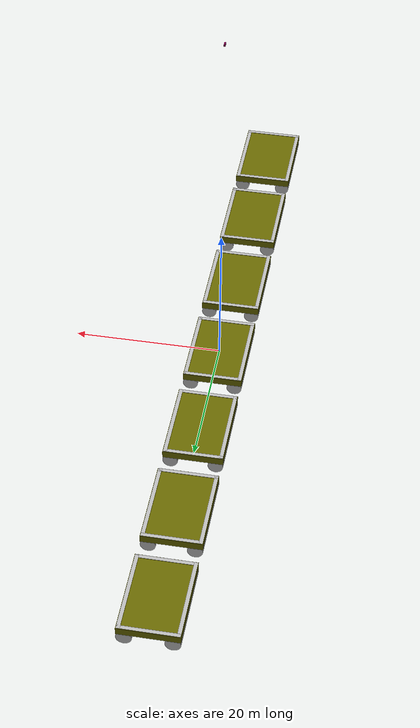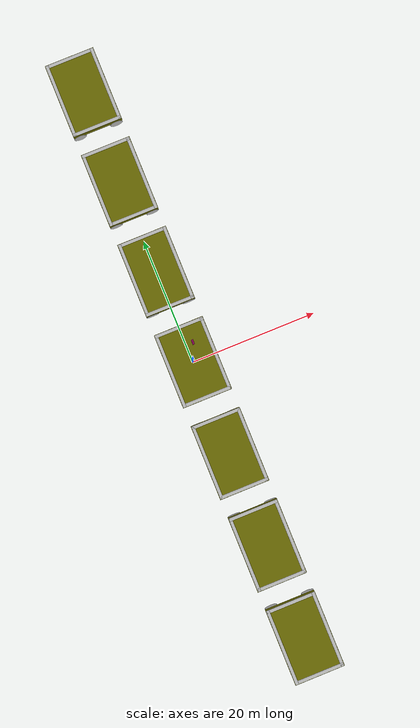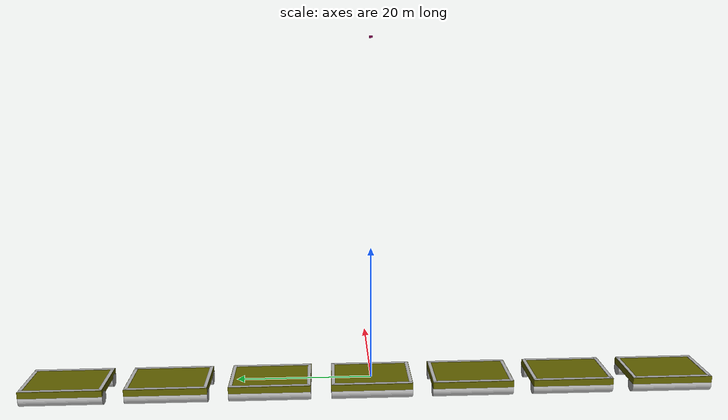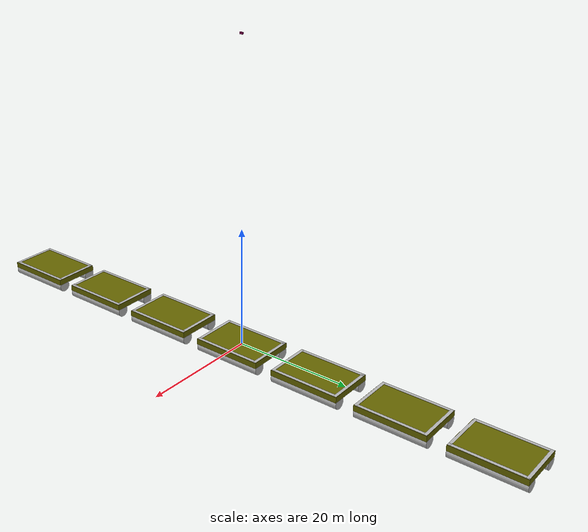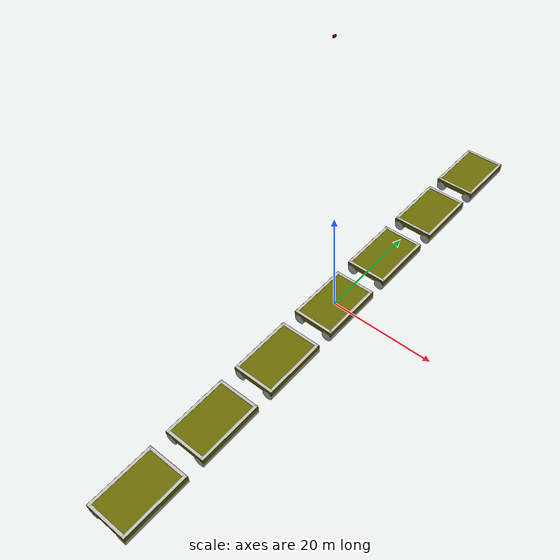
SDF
<sdf version="1.6">
 <world name="SandIsland">
  <scene>
   <sky><clouds><speed>12</speed></clouds></sky>
   <ambient>0.4 0.4 0.4 1</ambient>
   <background>0.7 0.7 0.7 1</background>
   <shadows>1</shadows>
  </scene>
  <wind><linear_velocity>5 0 0</linear_velocity></wind>
  <light name="sun" type="directional">
   <pose>0 0 10 0 -0 0</pose>
   <diffuse>0.8 0.8 0.8 1</diffuse>
   <specular>0.2 0.2 0.2 1</specular>
   <attenuation>
    <range>1000</range>
    <constant>0.9</constant>
    <linear>0.01</linear>
    <quadratic>0.001</quadratic>
   </attenuation>
   <direction>-0.5 0.1 -0.9</direction>
  </light>
  <model name="aerial_camera">
   <pose>0 0 50 0.000796 1.57 3.1408</pose>
   <static>1</static>
   <link name="camera">
    <collision name="camera"><geometry><box><size>0.3 0.5 0.2</size></box></geometry></collision>
    <visual name="camera">
     <geometry><box><size>0.3 0.5 0.2</size></box></geometry>
     <material><diffuse>0.5 0 0.3 1</diffuse></material>
    </visual>
    <sensor name="camera" type="camera">
     <update_rate>30</update_rate>
     <camera name="head">
      <horizontal_fov>1.57</horizontal_fov>
      <image><width>4096</width><height>2160</height><format>R8G8B8</format></image>
      <clip><near>0.02</near><far>300</far></clip>
      <noise><type>gaussian</type><mean>0</mean><stddev>0.007</stddev></noise>
     </camera>
     <plugin name="camera_controller" filename="libgazebo_ros_camera.so">
      <alwaysOn>true</alwaysOn>
      <updateRate>0.0</updateRate>
      <cameraName>aerial_camera/camera1</cameraName>
      <imageTopicName>image_raw</imageTopicName>
      <cameraInfoTopicName>camera_info</cameraInfoTopicName>
      <frameName>camera_link</frameName>
      <hackBaseline>0.07</hackBaseline>
      <distortionK1>0.0</distortionK1>
      <distortionK2>0.0</distortionK2>
      <distortionK3>0.0</distortionK3>
      <distortionT1>0.0</distortionT1>
      <distortionT2>0.0</distortionT2>
     </plugin>
    </sensor>
   </link>
  </model>
  <gravity>0 0 -9.8</gravity>
  <magnetic_field>6e-06 2.3e-05 -4.2e-05</magnetic_field>
  <atmosphere type="adiabatic"/>
  <physics name="default_physics" default="0" type="ode">
   <max_step_size>0.001</max_step_size>
   <real_time_factor>1</real_time_factor>
   <real_time_update_rate>1000</real_time_update_rate>
  </physics>
  <spherical_coordinates>
   <surface_model>EARTH_WGS84</surface_model>
   <latitude_deg>0</latitude_deg>
   <longitude_deg>0</longitude_deg>
   <elevation>0</elevation>
   <heading_deg>0</heading_deg>
  </spherical_coordinates>
  <model name="tug_boat">
   <pose>0.0 0.0 0.0 0.0 0.0 1.57</pose>
   <static>0</static>
   <link name="body">
    <collision name="body"><geometry><box><size>12 8 1</size></box></geometry></collision>
    <visual name="body">
     <geometry><box><size>12 8 1</size></box></geometry>
     <material><diffuse>0.4 0.4 0 1</diffuse></material>
    </visual>
    <inertial>
     <mass>1000</mass>
     <inertia><ixx>1</ixx><ixy>0</ixy><ixz>0</ixz><iyy>1</iyy><iyz>0</iyz><izz>1</izz></inertia>
    </inertial>
   </link>
   <link name="right_floater">
    <pose>0 -3 -1 0 1.57 0</pose>
    <collision name="right_floater">
     <geometry><cylinder><radius>1</radius><length>12</length></cylinder></geometry>
    </collision>
    <visual name="right_floater">
     <geometry><cylinder><radius>1</radius><length>12</length></cylinder></geometry>
    </visual>
    <inertial>
     <mass>30</mass>
     <inertia><ixx>1</ixx><ixy>0</ixy><ixz>0</ixz><iyy>1</iyy><iyz>0</iyz><izz>1</izz></inertia>
    </inertial>
   </link>
   <link name="left_floater">
    <pose>0 3 -1 0 1.57 0</pose>
    <collision name="left_floater">
     <geometry><cylinder><radius>1</radius><length>12</length></cylinder></geometry>
    </collision>
    <visual name="left_floater">
     <geometry><cylinder><radius>1</radius><length>12</length></cylinder></geometry>
    </visual>
    <inertial>
     <mass>30</mass>
     <inertia><ixx>1</ixx><ixy>0</ixy><ixz>0</ixz><iyy>1</iyy><iyz>0</iyz><izz>1</izz></inertia>
    </inertial>
   </link>
   <link name="left_line">
    <pose>0 -3.7 0.5 0 -0 0</pose>
    <collision name="left_line"><geometry><box><size>11.9 0.5 0.1</size></box></geometry></collision>
    <visual name="left_line"><geometry><box><size>11.9 0.5 0.1</size></box></geometry></visual>
    <inertial>
     <inertia><ixx>1</ixx><ixy>0</ixy><ixz>0</ixz><iyy>1</iyy><iyz>0</iyz><izz>1</izz></inertia>
     <mass>1</mass>
    </inertial>
   </link>
   <link name="right_line">
    <pose>0 3.7 0.5 0 -0 0</pose>
    <collision name="right_line"><geometry><box><size>11.9 0.5 0.1</size></box></geometry></collision>
    <visual name="right_line"><geometry><box><size>11.9 0.5 0.1</size></box></geometry></visual>
    <inertial>
     <inertia><ixx>1</ixx><ixy>0</ixy><ixz>0</ixz><iyy>1</iyy><iyz>0</iyz><izz>1</izz></inertia>
     <mass>1</mass>
    </inertial>
   </link>
   <link name="front_line">
    <pose>5.7 0 0.5 0 -0 0</pose>
    <collision name="front_line"><geometry><box><size>0.5 7.9 0.1</size></box></geometry></collision>
    <visual name="front_line"><geometry><box><size>0.5 7.9 0.1</size></box></geometry></visual>
    <inertial>
     <inertia><ixx>1</ixx><ixy>0</ixy><ixz>0</ixz><iyy>1</iyy><iyz>0</iyz><izz>1</izz></inertia>
     <mass>1</mass>
    </inertial>
   </link>
   <link name="back_line">
    <pose>-5.7 0 0.5 0 -0 0</pose>
    <collision name="back_line"><geometry><box><size>0.5 7.9 0.1</size></box></geometry></collision>
    <visual name="back_line"><geometry><box><size>0.5 7.9 0.1</size></box></geometry></visual>
    <inertial>
     <inertia><ixx>1</ixx><ixy>0</ixy><ixz>0</ixz><iyy>1</iyy><iyz>0</iyz><izz>1</izz></inertia>
     <mass>1</mass>
    </inertial>
   </link>
   <joint name="body2right_floater" type="fixed"><parent>body</parent><child>right_floater</child></joint>
   <joint name="body2left_floater" type="fixed"><parent>body</parent><child>left_floater</child></joint>
   <joint name="body2left_line" type="fixed"><parent>body</parent><child>left_line</child></joint>
   <joint name="body2right_line" type="fixed"><parent>body</parent><child>right_line</child></joint>
   <joint name="body2front_line" type="fixed"><parent>body</parent><child>front_line</child></joint>
   <joint name="body2back_line" type="fixed"><parent>body</parent><child>back_line</child></joint>
   <plugin name="BuoyancyPlugin" filename="libbuoyancy_gazebo_plugin.so">
    <fluid_density>1000</fluid_density>
    <fluid_level>0.0</fluid_level>
    <fluid_drag>5.0</fluid_drag>
    <link>
     <name>body</name>
     <center_of_volume>5.5 0 1</center_of_volume>
     <area>0.63</area>
     <height>0.70</height>
    </link>
   </plugin>
   <plugin name="BuoyancyPlugin" filename="libbuoyancy_gazebo_plugin.so">
    <fluid_density>1000</fluid_density>
    <fluid_level>0.0</fluid_level>
    <fluid_drag>5.0</fluid_drag>
    <link>
     <name>body</name>
     <center_of_volume>-5.5 0 1</center_of_volume>
     <area>0.63</area>
     <height>0.70</height>
    </link>
   </plugin>
   <plugin name="BuoyancyPlugin" filename="libbuoyancy_gazebo_plugin.so">
    <fluid_density>1000</fluid_density>
    <fluid_level>0.0</fluid_level>
    <fluid_drag>5.0</fluid_drag>
    <link>
     <name>body</name>
     <center_of_volume>0 -3.5 1</center_of_volume>
     <area>0.63</area>
     <height>0.70</height>
    </link>
   </plugin>
   <plugin name="BuoyancyPlugin" filename="libbuoyancy_gazebo_plugin.so">
    <fluid_density>1000</fluid_density>
    <fluid_level>0.0</fluid_level>
    <fluid_drag>5.0</fluid_drag>
    <link>
     <name>body</name>
     <center_of_volume>0 3.5 1</center_of_volume>
     <area>0.63</area>
     <height>0.70</height>
    </link>
   </plugin>
   <plugin name="ThrusterPlugin" filename="libusv_gazebo_thrust_plugin.so">
    <bodyName>body</bodyName>
    <mappingType>1</mappingType>
    <boatArea>96.0</boatArea>
    <boatWidth>12.0</boatWidth>
    <boatLength>8.0</boatLength>
    <thrustOffsetZ>-0.05</thrustOffsetZ>
    <maxCmd>100.0</maxCmd>
    <maxForceFwd>25.0</maxForceFwd>
    <maxForceRev>-25.0</maxForceRev>
    <cmdTimeout>0.1</cmdTimeout>
   </plugin>
  </model>
  <model name="tug_boat_0">
   <pose>0.0 -15.00 0.0 0.0 0.0 1.57</pose>
   <static>0</static>
   <link name="body">
    <collision name="body"><geometry><box><size>12 8 1</size></box></geometry></collision>
    <visual name="body">
     <geometry><box><size>12 8 1</size></box></geometry>
     <material><diffuse>0.4 0.4 0 1</diffuse></material>
    </visual>
    <inertial>
     <mass>1000</mass>
     <inertia><ixx>1</ixx><ixy>0</ixy><ixz>0</ixz><iyy>1</iyy><iyz>0</iyz><izz>1</izz></inertia>
    </inertial>
   </link>
   <link name="right_floater">
    <pose>0 -3 -1 0 1.57 0</pose>
    <collision name="right_floater">
     <geometry><cylinder><radius>1</radius><length>12</length></cylinder></geometry>
    </collision>
    <visual name="right_floater">
     <geometry><cylinder><radius>1</radius><length>12</length></cylinder></geometry>
    </visual>
    <inertial>
     <mass>30</mass>
     <inertia><ixx>1</ixx><ixy>0</ixy><ixz>0</ixz><iyy>1</iyy><iyz>0</iyz><izz>1</izz></inertia>
    </inertial>
   </link>
   <link name="left_floater">
    <pose>0 3 -1 0 1.57 0</pose>
    <collision name="left_floater">
     <geometry><cylinder><radius>1</radius><length>12</length></cylinder></geometry>
    </collision>
    <visual name="left_floater">
     <geometry><cylinder><radius>1</radius><length>12</length></cylinder></geometry>
    </visual>
    <inertial>
     <mass>30</mass>
     <inertia><ixx>1</ixx><ixy>0</ixy><ixz>0</ixz><iyy>1</iyy><iyz>0</iyz><izz>1</izz></inertia>
    </inertial>
   </link>
   <link name="left_line">
    <pose>0 -3.7 0.5 0 -0 0</pose>
    <collision name="left_line"><geometry><box><size>11.9 0.5 0.1</size></box></geometry></collision>
    <visual name="left_line"><geometry><box><size>11.9 0.5 0.1</size></box></geometry></visual>
    <inertial>
     <inertia><ixx>1</ixx><ixy>0</ixy><ixz>0</ixz><iyy>1</iyy><iyz>0</iyz><izz>1</izz></inertia>
     <mass>1</mass>
    </inertial>
   </link>
   <link name="right_line">
    <pose>0 3.7 0.5 0 -0 0</pose>
    <collision name="right_line"><geometry><box><size>11.9 0.5 0.1</size></box></geometry></collision>
    <visual name="right_line"><geometry><box><size>11.9 0.5 0.1</size></box></geometry></visual>
    <inertial>
     <inertia><ixx>1</ixx><ixy>0</ixy><ixz>0</ixz><iyy>1</iyy><iyz>0</iyz><izz>1</izz></inertia>
     <mass>1</mass>
    </inertial>
   </link>
   <link name="front_line">
    <pose>5.7 0 0.5 0 -0 0</pose>
    <collision name="front_line"><geometry><box><size>0.5 7.9 0.1</size></box></geometry></collision>
    <visual name="front_line"><geometry><box><size>0.5 7.9 0.1</size></box></geometry></visual>
    <inertial>
     <inertia><ixx>1</ixx><ixy>0</ixy><ixz>0</ixz><iyy>1</iyy><iyz>0</iyz><izz>1</izz></inertia>
     <mass>1</mass>
    </inertial>
   </link>
   <link name="back_line">
    <pose>-5.7 0 0.5 0 -0 0</pose>
    <collision name="back_line"><geometry><box><size>0.5 7.9 0.1</size></box></geometry></collision>
    <visual name="back_line"><geometry><box><size>0.5 7.9 0.1</size></box></geometry></visual>
    <inertial>
     <inertia><ixx>1</ixx><ixy>0</ixy><ixz>0</ixz><iyy>1</iyy><iyz>0</iyz><izz>1</izz></inertia>
     <mass>1</mass>
    </inertial>
   </link>
   <joint name="body2right_floater" type="fixed"><parent>body</parent><child>right_floater</child></joint>
   <joint name="body2left_floater" type="fixed"><parent>body</parent><child>left_floater</child></joint>
   <joint name="body2left_line" type="fixed"><parent>body</parent><child>left_line</child></joint>
   <joint name="body2right_line" type="fixed"><parent>body</parent><child>right_line</child></joint>
   <joint name="body2front_line" type="fixed"><parent>body</parent><child>front_line</child></joint>
   <joint name="body2back_line" type="fixed"><parent>body</parent><child>back_line</child></joint>
   <plugin name="BuoyancyPlugin" filename="libbuoyancy_gazebo_plugin.so">
    <fluid_density>1000</fluid_density>
    <fluid_level>0.0</fluid_level>
    <fluid_drag>5.0</fluid_drag>
    <link>
     <name>body</name>
     <center_of_volume>5.5 0 1</center_of_volume>
     <area>0.63</area>
     <height>0.70</height>
    </link>
   </plugin>
   <plugin name="BuoyancyPlugin" filename="libbuoyancy_gazebo_plugin.so">
    <fluid_density>1000</fluid_density>
    <fluid_level>0.0</fluid_level>
    <fluid_drag>5.0</fluid_drag>
    <link>
     <name>body</name>
     <center_of_volume>-5.5 0 1</center_of_volume>
     <area>0.63</area>
     <height>0.70</height>
    </link>
   </plugin>
   <plugin name="BuoyancyPlugin" filename="libbuoyancy_gazebo_plugin.so">
    <fluid_density>1000</fluid_density>
    <fluid_level>0.0</fluid_level>
    <fluid_drag>5.0</fluid_drag>
    <link>
     <name>body</name>
     <center_of_volume>0 -3.5 1</center_of_volume>
     <area>0.63</area>
     <height>0.70</height>
    </link>
   </plugin>
   <plugin name="BuoyancyPlugin" filename="libbuoyancy_gazebo_plugin.so">
    <fluid_density>1000</fluid_density>
    <fluid_level>0.0</fluid_level>
    <fluid_drag>5.0</fluid_drag>
    <link>
     <name>body</name>
     <center_of_volume>0 3.5 1</center_of_volume>
     <area>0.63</area>
     <height>0.70</height>
    </link>
   </plugin>
   <plugin name="ThrusterPlugin" filename="libusv_gazebo_thrust_plugin.so">
    <bodyName>body</bodyName>
    <mappingType>1</mappingType>
    <boatArea>96.0</boatArea>
    <boatWidth>12.0</boatWidth>
    <boatLength>8.0</boatLength>
    <thrustOffsetZ>-0.05</thrustOffsetZ>
    <maxCmd>100.0</maxCmd>
    <maxForceFwd>25.0</maxForceFwd>
    <maxForceRev>-25.0</maxForceRev>
    <cmdTimeout>0.1</cmdTimeout>
   </plugin>
  </model>
  <model name="tug_boat_1">
   <pose>0.0 -30.00 0.0 0.0 0.0 1.57</pose>
   <static>0</static>
   <link name="body">
    <collision name="body"><geometry><box><size>12 8 1</size></box></geometry></collision>
    <visual name="body">
     <geometry><box><size>12 8 1</size></box></geometry>
     <material><diffuse>0.4 0.4 0 1</diffuse></material>
    </visual>
    <inertial>
     <mass>1000</mass>
     <inertia><ixx>1</ixx><ixy>0</ixy><ixz>0</ixz><iyy>1</iyy><iyz>0</iyz><izz>1</izz></inertia>
    </inertial>
   </link>
   <link name="right_floater">
    <pose>0 -3 -1 0 1.57 0</pose>
    <collision name="right_floater">
     <geometry><cylinder><radius>1</radius><length>12</length></cylinder></geometry>
    </collision>
    <visual name="right_floater">
     <geometry><cylinder><radius>1</radius><length>12</length></cylinder></geometry>
    </visual>
    <inertial>
     <mass>30</mass>
     <inertia><ixx>1</ixx><ixy>0</ixy><ixz>0</ixz><iyy>1</iyy><iyz>0</iyz><izz>1</izz></inertia>
    </inertial>
   </link>
   <link name="left_floater">
    <pose>0 3 -1 0 1.57 0</pose>
    <collision name="left_floater">
     <geometry><cylinder><radius>1</radius><length>12</length></cylinder></geometry>
    </collision>
    <visual name="left_floater">
     <geometry><cylinder><radius>1</radius><length>12</length></cylinder></geometry>
    </visual>
    <inertial>
     <mass>30</mass>
     <inertia><ixx>1</ixx><ixy>0</ixy><ixz>0</ixz><iyy>1</iyy><iyz>0</iyz><izz>1</izz></inertia>
    </inertial>
   </link>
   <link name="left_line">
    <pose>0 -3.7 0.5 0 -0 0</pose>
    <collision name="left_line"><geometry><box><size>11.9 0.5 0.1</size></box></geometry></collision>
    <visual name="left_line"><geometry><box><size>11.9 0.5 0.1</size></box></geometry></visual>
    <inertial>
     <inertia><ixx>1</ixx><ixy>0</ixy><ixz>0</ixz><iyy>1</iyy><iyz>0</iyz><izz>1</izz></inertia>
     <mass>1</mass>
    </inertial>
   </link>
   <link name="right_line">
    <pose>0 3.7 0.5 0 -0 0</pose>
    <collision name="right_line"><geometry><box><size>11.9 0.5 0.1</size></box></geometry></collision>
    <visual name="right_line"><geometry><box><size>11.9 0.5 0.1</size></box></geometry></visual>
    <inertial>
     <inertia><ixx>1</ixx><ixy>0</ixy><ixz>0</ixz><iyy>1</iyy><iyz>0</iyz><izz>1</izz></inertia>
     <mass>1</mass>
    </inertial>
   </link>
   <link name="front_line">
    <pose>5.7 0 0.5 0 -0 0</pose>
    <collision name="front_line"><geometry><box><size>0.5 7.9 0.1</size></box></geometry></collision>
    <visual name="front_line"><geometry><box><size>0.5 7.9 0.1</size></box></geometry></visual>
    <inertial>
     <inertia><ixx>1</ixx><ixy>0</ixy><ixz>0</ixz><iyy>1</iyy><iyz>0</iyz><izz>1</izz></inertia>
     <mass>1</mass>
    </inertial>
   </link>
   <link name="back_line">
    <pose>-5.7 0 0.5 0 -0 0</pose>
    <collision name="back_line"><geometry><box><size>0.5 7.9 0.1</size></box></geometry></collision>
    <visual name="back_line"><geometry><box><size>0.5 7.9 0.1</size></box></geometry></visual>
    <inertial>
     <inertia><ixx>1</ixx><ixy>0</ixy><ixz>0</ixz><iyy>1</iyy><iyz>0</iyz><izz>1</izz></inertia>
     <mass>1</mass>
    </inertial>
   </link>
   <joint name="body2right_floater" type="fixed"><parent>body</parent><child>right_floater</child></joint>
   <joint name="body2left_floater" type="fixed"><parent>body</parent><child>left_floater</child></joint>
   <joint name="body2left_line" type="fixed"><parent>body</parent><child>left_line</child></joint>
   <joint name="body2right_line" type="fixed"><parent>body</parent><child>right_line</child></joint>
   <joint name="body2front_line" type="fixed"><parent>body</parent><child>front_line</child></joint>
   <joint name="body2back_line" type="fixed"><parent>body</parent><child>back_line</child></joint>
   <plugin name="BuoyancyPlugin" filename="libbuoyancy_gazebo_plugin.so">
    <fluid_density>1000</fluid_density>
    <fluid_level>0.0</fluid_level>
    <fluid_drag>5.0</fluid_drag>
    <link>
     <name>body</name>
     <center_of_volume>5.5 0 1</center_of_volume>
     <area>0.63</area>
     <height>0.70</height>
    </link>
   </plugin>
   <plugin name="BuoyancyPlugin" filename="libbuoyancy_gazebo_plugin.so">
    <fluid_density>1000</fluid_density>
    <fluid_level>0.0</fluid_level>
    <fluid_drag>5.0</fluid_drag>
    <link>
     <name>body</name>
     <center_of_volume>-5.5 0 1</center_of_volume>
     <area>0.63</area>
     <height>0.70</height>
    </link>
   </plugin>
   <plugin name="BuoyancyPlugin" filename="libbuoyancy_gazebo_plugin.so">
    <fluid_density>1000</fluid_density>
    <fluid_level>0.0</fluid_level>
    <fluid_drag>5.0</fluid_drag>
    <link>
     <name>body</name>
     <center_of_volume>0 -3.5 1</center_of_volume>
     <area>0.63</area>
     <height>0.70</height>
    </link>
   </plugin>
   <plugin name="BuoyancyPlugin" filename="libbuoyancy_gazebo_plugin.so">
    <fluid_density>1000</fluid_density>
    <fluid_level>0.0</fluid_level>
    <fluid_drag>5.0</fluid_drag>
    <link>
     <name>body</name>
     <center_of_volume>0 3.5 1</center_of_volume>
     <area>0.63</area>
     <height>0.70</height>
    </link>
   </plugin>
   <plugin name="ThrusterPlugin" filename="libusv_gazebo_thrust_plugin.so">
    <bodyName>body</bodyName>
    <mappingType>1</mappingType>
    <boatArea>96.0</boatArea>
    <boatWidth>12.0</boatWidth>
    <boatLength>8.0</boatLength>
    <thrustOffsetZ>-0.05</thrustOffsetZ>
    <maxCmd>100.0</maxCmd>
    <maxForceFwd>25.0</maxForceFwd>
    <maxForceRev>-25.0</maxForceRev>
    <cmdTimeout>0.1</cmdTimeout>
   </plugin>
  </model>
  <model name="tug_boat_2">
   <pose>0.0 -45.00 0.0 0.0 0.0 1.57</pose>
   <static>0</static>
   <link name="body">
    <collision name="body"><geometry><box><size>12 8 1</size></box></geometry></collision>
    <visual name="body">
     <geometry><box><size>12 8 1</size></box></geometry>
     <material><diffuse>0.4 0.4 0 1</diffuse></material>
    </visual>
    <inertial>
     <mass>1000</mass>
     <inertia><ixx>1</ixx><ixy>0</ixy><ixz>0</ixz><iyy>1</iyy><iyz>0</iyz><izz>1</izz></inertia>
    </inertial>
   </link>
   <link name="right_floater">
    <pose>0 -3 -1 0 1.57 0</pose>
    <collision name="right_floater">
     <geometry><cylinder><radius>1</radius><length>12</length></cylinder></geometry>
    </collision>
    <visual name="right_floater">
     <geometry><cylinder><radius>1</radius><length>12</length></cylinder></geometry>
    </visual>
    <inertial>
     <mass>30</mass>
     <inertia><ixx>1</ixx><ixy>0</ixy><ixz>0</ixz><iyy>1</iyy><iyz>0</iyz><izz>1</izz></inertia>
    </inertial>
   </link>
   <link name="left_floater">
    <pose>0 3 -1 0 1.57 0</pose>
    <collision name="left_floater">
     <geometry><cylinder><radius>1</radius><length>12</length></cylinder></geometry>
    </collision>
    <visual name="left_floater">
     <geometry><cylinder><radius>1</radius><length>12</length></cylinder></geometry>
    </visual>
    <inertial>
     <mass>30</mass>
     <inertia><ixx>1</ixx><ixy>0</ixy><ixz>0</ixz><iyy>1</iyy><iyz>0</iyz><izz>1</izz></inertia>
    </inertial>
   </link>
   <link name="left_line">
    <pose>0 -3.7 0.5 0 -0 0</pose>
    <collision name="left_line"><geometry><box><size>11.9 0.5 0.1</size></box></geometry></collision>
    <visual name="left_line"><geometry><box><size>11.9 0.5 0.1</size></box></geometry></visual>
    <inertial>
     <inertia><ixx>1</ixx><ixy>0</ixy><ixz>0</ixz><iyy>1</iyy><iyz>0</iyz><izz>1</izz></inertia>
     <mass>1</mass>
    </inertial>
   </link>
   <link name="right_line">
    <pose>0 3.7 0.5 0 -0 0</pose>
    <collision name="right_line"><geometry><box><size>11.9 0.5 0.1</size></box></geometry></collision>
    <visual name="right_line"><geometry><box><size>11.9 0.5 0.1</size></box></geometry></visual>
    <inertial>
     <inertia><ixx>1</ixx><ixy>0</ixy><ixz>0</ixz><iyy>1</iyy><iyz>0</iyz><izz>1</izz></inertia>
     <mass>1</mass>
    </inertial>
   </link>
   <link name="front_line">
    <pose>5.7 0 0.5 0 -0 0</pose>
    <collision name="front_line"><geometry><box><size>0.5 7.9 0.1</size></box></geometry></collision>
    <visual name="front_line"><geometry><box><size>0.5 7.9 0.1</size></box></geometry></visual>
    <inertial>
     <inertia><ixx>1</ixx><ixy>0</ixy><ixz>0</ixz><iyy>1</iyy><iyz>0</iyz><izz>1</izz></inertia>
     <mass>1</mass>
    </inertial>
   </link>
   <link name="back_line">
    <pose>-5.7 0 0.5 0 -0 0</pose>
    <collision name="back_line"><geometry><box><size>0.5 7.9 0.1</size></box></geometry></collision>
    <visual name="back_line"><geometry><box><size>0.5 7.9 0.1</size></box></geometry></visual>
    <inertial>
     <inertia><ixx>1</ixx><ixy>0</ixy><ixz>0</ixz><iyy>1</iyy><iyz>0</iyz><izz>1</izz></inertia>
     <mass>1</mass>
    </inertial>
   </link>
   <joint name="body2right_floater" type="fixed"><parent>body</parent><child>right_floater</child></joint>
   <joint name="body2left_floater" type="fixed"><parent>body</parent><child>left_floater</child></joint>
   <joint name="body2left_line" type="fixed"><parent>body</parent><child>left_line</child></joint>
   <joint name="body2right_line" type="fixed"><parent>body</parent><child>right_line</child></joint>
   <joint name="body2front_line" type="fixed"><parent>body</parent><child>front_line</child></joint>
   <joint name="body2back_line" type="fixed"><parent>body</parent><child>back_line</child></joint>
   <plugin name="BuoyancyPlugin" filename="libbuoyancy_gazebo_plugin.so">
    <fluid_density>1000</fluid_density>
    <fluid_level>0.0</fluid_level>
    <fluid_drag>5.0</fluid_drag>
    <link>
     <name>body</name>
     <center_of_volume>5.5 0 1</center_of_volume>
     <area>0.63</area>
     <height>0.70</height>
    </link>
   </plugin>
   <plugin name="BuoyancyPlugin" filename="libbuoyancy_gazebo_plugin.so">
    <fluid_density>1000</fluid_density>
    <fluid_level>0.0</fluid_level>
    <fluid_drag>5.0</fluid_drag>
    <link>
     <name>body</name>
     <center_of_volume>-5.5 0 1</center_of_volume>
     <area>0.63</area>
     <height>0.70</height>
    </link>
   </plugin>
   <plugin name="BuoyancyPlugin" filename="libbuoyancy_gazebo_plugin.so">
    <fluid_density>1000</fluid_density>
    <fluid_level>0.0</fluid_level>
    <fluid_drag>5.0</fluid_drag>
    <link>
     <name>body</name>
     <center_of_volume>0 -3.5 1</center_of_volume>
     <area>0.63</area>
     <height>0.70</height>
    </link>
   </plugin>
   <plugin name="BuoyancyPlugin" filename="libbuoyancy_gazebo_plugin.so">
    <fluid_density>1000</fluid_density>
    <fluid_level>0.0</fluid_level>
    <fluid_drag>5.0</fluid_drag>
    <link>
     <name>body</name>
     <center_of_volume>0 3.5 1</center_of_volume>
     <area>0.63</area>
     <height>0.70</height>
    </link>
   </plugin>
   <plugin name="ThrusterPlugin" filename="libusv_gazebo_thrust_plugin.so">
    <bodyName>body</bodyName>
    <mappingType>1</mappingType>
    <boatArea>96.0</boatArea>
    <boatWidth>12.0</boatWidth>
    <boatLength>8.0</boatLength>
    <thrustOffsetZ>-0.05</thrustOffsetZ>
    <maxCmd>100.0</maxCmd>
    <maxForceFwd>25.0</maxForceFwd>
    <maxForceRev>-25.0</maxForceRev>
    <cmdTimeout>0.1</cmdTimeout>
   </plugin>
  </model>
  <model name="tug_boat_3">
   <pose>0.0 15.00 0.0 0.0 0.0 1.57</pose>
   <static>0</static>
   <link name="body">
    <collision name="body"><geometry><box><size>12 8 1</size></box></geometry></collision>
    <visual name="body">
     <geometry><box><size>12 8 1</size></box></geometry>
     <material><diffuse>0.4 0.4 0 1</diffuse></material>
    </visual>
    <inertial>
     <mass>1000</mass>
     <inertia><ixx>1</ixx><ixy>0</ixy><ixz>0</ixz><iyy>1</iyy><iyz>0</iyz><izz>1</izz></inertia>
    </inertial>
   </link>
   <link name="right_floater">
    <pose>0 -3 -1 0 1.57 0</pose>
    <collision name="right_floater">
     <geometry><cylinder><radius>1</radius><length>12</length></cylinder></geometry>
    </collision>
    <visual name="right_floater">
     <geometry><cylinder><radius>1</radius><length>12</length></cylinder></geometry>
    </visual>
    <inertial>
     <mass>30</mass>
     <inertia><ixx>1</ixx><ixy>0</ixy><ixz>0</ixz><iyy>1</iyy><iyz>0</iyz><izz>1</izz></inertia>
    </inertial>
   </link>
   <link name="left_floater">
    <pose>0 3 -1 0 1.57 0</pose>
    <collision name="left_floater">
     <geometry><cylinder><radius>1</radius><length>12</length></cylinder></geometry>
    </collision>
    <visual name="left_floater">
     <geometry><cylinder><radius>1</radius><length>12</length></cylinder></geometry>
    </visual>
    <inertial>
     <mass>30</mass>
     <inertia><ixx>1</ixx><ixy>0</ixy><ixz>0</ixz><iyy>1</iyy><iyz>0</iyz><izz>1</izz></inertia>
    </inertial>
   </link>
   <link name="left_line">
    <pose>0 -3.7 0.5 0 -0 0</pose>
    <collision name="left_line"><geometry><box><size>11.9 0.5 0.1</size></box></geometry></collision>
    <visual name="left_line"><geometry><box><size>11.9 0.5 0.1</size></box></geometry></visual>
    <inertial>
     <inertia><ixx>1</ixx><ixy>0</ixy><ixz>0</ixz><iyy>1</iyy><iyz>0</iyz><izz>1</izz></inertia>
     <mass>1</mass>
    </inertial>
   </link>
   <link name="right_line">
    <pose>0 3.7 0.5 0 -0 0</pose>
    <collision name="right_line"><geometry><box><size>11.9 0.5 0.1</size></box></geometry></collision>
    <visual name="right_line"><geometry><box><size>11.9 0.5 0.1</size></box></geometry></visual>
    <inertial>
     <inertia><ixx>1</ixx><ixy>0</ixy><ixz>0</ixz><iyy>1</iyy><iyz>0</iyz><izz>1</izz></inertia>
     <mass>1</mass>
    </inertial>
   </link>
   <link name="front_line">
    <pose>5.7 0 0.5 0 -0 0</pose>
    <collision name="front_line"><geometry><box><size>0.5 7.9 0.1</size></box></geometry></collision>
    <visual name="front_line"><geometry><box><size>0.5 7.9 0.1</size></box></geometry></visual>
    <inertial>
     <inertia><ixx>1</ixx><ixy>0</ixy><ixz>0</ixz><iyy>1</iyy><iyz>0</iyz><izz>1</izz></inertia>
     <mass>1</mass>
    </inertial>
   </link>
   <link name="back_line">
    <pose>-5.7 0 0.5 0 -0 0</pose>
    <collision name="back_line"><geometry><box><size>0.5 7.9 0.1</size></box></geometry></collision>
    <visual name="back_line"><geometry><box><size>0.5 7.9 0.1</size></box></geometry></visual>
    <inertial>
     <inertia><ixx>1</ixx><ixy>0</ixy><ixz>0</ixz><iyy>1</iyy><iyz>0</iyz><izz>1</izz></inertia>
     <mass>1</mass>
    </inertial>
   </link>
   <joint name="body2right_floater" type="fixed"><parent>body</parent><child>right_floater</child></joint>
   <joint name="body2left_floater" type="fixed"><parent>body</parent><child>left_floater</child></joint>
   <joint name="body2left_line" type="fixed"><parent>body</parent><child>left_line</child></joint>
   <joint name="body2right_line" type="fixed"><parent>body</parent><child>right_line</child></joint>
   <joint name="body2front_line" type="fixed"><parent>body</parent><child>front_line</child></joint>
   <joint name="body2back_line" type="fixed"><parent>body</parent><child>back_line</child></joint>
   <plugin name="BuoyancyPlugin" filename="libbuoyancy_gazebo_plugin.so">
    <fluid_density>1000</fluid_density>
    <fluid_level>0.0</fluid_level>
    <fluid_drag>5.0</fluid_drag>
    <link>
     <name>body</name>
     <center_of_volume>5.5 0 1</center_of_volume>
     <area>0.63</area>
     <height>0.70</height>
    </link>
   </plugin>
   <plugin name="BuoyancyPlugin" filename="libbuoyancy_gazebo_plugin.so">
    <fluid_density>1000</fluid_density>
    <fluid_level>0.0</fluid_level>
    <fluid_drag>5.0</fluid_drag>
    <link>
     <name>body</name>
     <center_of_volume>-5.5 0 1</center_of_volume>
     <area>0.63</area>
     <height>0.70</height>
    </link>
   </plugin>
   <plugin name="BuoyancyPlugin" filename="libbuoyancy_gazebo_plugin.so">
    <fluid_density>1000</fluid_density>
    <fluid_level>0.0</fluid_level>
    <fluid_drag>5.0</fluid_drag>
    <link>
     <name>body</name>
     <center_of_volume>0 -3.5 1</center_of_volume>
     <area>0.63</area>
     <height>0.70</height>
    </link>
   </plugin>
   <plugin name="BuoyancyPlugin" filename="libbuoyancy_gazebo_plugin.so">
    <fluid_density>1000</fluid_density>
    <fluid_level>0.0</fluid_level>
    <fluid_drag>5.0</fluid_drag>
    <link>
     <name>body</name>
     <center_of_volume>0 3.5 1</center_of_volume>
     <area>0.63</area>
     <height>0.70</height>
    </link>
   </plugin>
   <plugin name="ThrusterPlugin" filename="libusv_gazebo_thrust_plugin.so">
    <bodyName>body</bodyName>
    <mappingType>1</mappingType>
    <boatArea>96.0</boatArea>
    <boatWidth>12.0</boatWidth>
    <boatLength>8.0</boatLength>
    <thrustOffsetZ>-0.05</thrustOffsetZ>
    <maxCmd>100.0</maxCmd>
    <maxForceFwd>25.0</maxForceFwd>
    <maxForceRev>-25.0</maxForceRev>
    <cmdTimeout>0.1</cmdTimeout>
   </plugin>
  </model>
  <model name="tug_boat_4">
   <pose>0.0 30.00 0.0 0.0 0.0 1.57</pose>
   <static>0</static>
   <link name="body">
    <collision name="body"><geometry><box><size>12 8 1</size></box></geometry></collision>
    <visual name="body">
     <geometry><box><size>12 8 1</size></box></geometry>
     <material><diffuse>0.4 0.4 0 1</diffuse></material>
    </visual>
    <inertial>
     <mass>1000</mass>
     <inertia><ixx>1</ixx><ixy>0</ixy><ixz>0</ixz><iyy>1</iyy><iyz>0</iyz><izz>1</izz></inertia>
    </inertial>
   </link>
   <link name="right_floater">
    <pose>0 -3 -1 0 1.57 0</pose>
    <collision name="right_floater">
     <geometry><cylinder><radius>1</radius><length>12</length></cylinder></geometry>
    </collision>
    <visual name="right_floater">
     <geometry><cylinder><radius>1</radius><length>12</length></cylinder></geometry>
    </visual>
    <inertial>
     <mass>30</mass>
     <inertia><ixx>1</ixx><ixy>0</ixy><ixz>0</ixz><iyy>1</iyy><iyz>0</iyz><izz>1</izz></inertia>
    </inertial>
   </link>
   <link name="left_floater">
    <pose>0 3 -1 0 1.57 0</pose>
    <collision name="left_floater">
     <geometry><cylinder><radius>1</radius><length>12</length></cylinder></geometry>
    </collision>
    <visual name="left_floater">
     <geometry><cylinder><radius>1</radius><length>12</length></cylinder></geometry>
    </visual>
    <inertial>
     <mass>30</mass>
     <inertia><ixx>1</ixx><ixy>0</ixy><ixz>0</ixz><iyy>1</iyy><iyz>0</iyz><izz>1</izz></inertia>
    </inertial>
   </link>
   <link name="left_line">
    <pose>0 -3.7 0.5 0 -0 0</pose>
    <collision name="left_line"><geometry><box><size>11.9 0.5 0.1</size></box></geometry></collision>
    <visual name="left_line"><geometry><box><size>11.9 0.5 0.1</size></box></geometry></visual>
    <inertial>
     <inertia><ixx>1</ixx><ixy>0</ixy><ixz>0</ixz><iyy>1</iyy><iyz>0</iyz><izz>1</izz></inertia>
     <mass>1</mass>
    </inertial>
   </link>
   <link name="right_line">
    <pose>0 3.7 0.5 0 -0 0</pose>
    <collision name="right_line"><geometry><box><size>11.9 0.5 0.1</size></box></geometry></collision>
    <visual name="right_line"><geometry><box><size>11.9 0.5 0.1</size></box></geometry></visual>
    <inertial>
     <inertia><ixx>1</ixx><ixy>0</ixy><ixz>0</ixz><iyy>1</iyy><iyz>0</iyz><izz>1</izz></inertia>
     <mass>1</mass>
    </inertial>
   </link>
   <link name="front_line">
    <pose>5.7 0 0.5 0 -0 0</pose>
    <collision name="front_line"><geometry><box><size>0.5 7.9 0.1</size></box></geometry></collision>
    <visual name="front_line"><geometry><box><size>0.5 7.9 0.1</size></box></geometry></visual>
    <inertial>
     <inertia><ixx>1</ixx><ixy>0</ixy><ixz>0</ixz><iyy>1</iyy><iyz>0</iyz><izz>1</izz></inertia>
     <mass>1</mass>
    </inertial>
   </link>
   <link name="back_line">
    <pose>-5.7 0 0.5 0 -0 0</pose>
    <collision name="back_line"><geometry><box><size>0.5 7.9 0.1</size></box></geometry></collision>
    <visual name="back_line"><geometry><box><size>0.5 7.9 0.1</size></box></geometry></visual>
    <inertial>
     <inertia><ixx>1</ixx><ixy>0</ixy><ixz>0</ixz><iyy>1</iyy><iyz>0</iyz><izz>1</izz></inertia>
     <mass>1</mass>
    </inertial>
   </link>
   <joint name="body2right_floater" type="fixed"><parent>body</parent><child>right_floater</child></joint>
   <joint name="body2left_floater" type="fixed"><parent>body</parent><child>left_floater</child></joint>
   <joint name="body2left_line" type="fixed"><parent>body</parent><child>left_line</child></joint>
   <joint name="body2right_line" type="fixed"><parent>body</parent><child>right_line</child></joint>
   <joint name="body2front_line" type="fixed"><parent>body</parent><child>front_line</child></joint>
   <joint name="body2back_line" type="fixed"><parent>body</parent><child>back_line</child></joint>
   <plugin name="BuoyancyPlugin" filename="libbuoyancy_gazebo_plugin.so">
    <fluid_density>1000</fluid_density>
    <fluid_level>0.0</fluid_level>
    <fluid_drag>5.0</fluid_drag>
    <link>
     <name>body</name>
     <center_of_volume>5.5 0 1</center_of_volume>
     <area>0.63</area>
     <height>0.70</height>
    </link>
   </plugin>
   <plugin name="BuoyancyPlugin" filename="libbuoyancy_gazebo_plugin.so">
    <fluid_density>1000</fluid_density>
    <fluid_level>0.0</fluid_level>
    <fluid_drag>5.0</fluid_drag>
    <link>
     <name>body</name>
     <center_of_volume>-5.5 0 1</center_of_volume>
     <area>0.63</area>
     <height>0.70</height>
    </link>
   </plugin>
   <plugin name="BuoyancyPlugin" filename="libbuoyancy_gazebo_plugin.so">
    <fluid_density>1000</fluid_density>
    <fluid_level>0.0</fluid_level>
    <fluid_drag>5.0</fluid_drag>
    <link>
     <name>body</name>
     <center_of_volume>0 -3.5 1</center_of_volume>
     <area>0.63</area>
     <height>0.70</height>
    </link>
   </plugin>
   <plugin name="BuoyancyPlugin" filename="libbuoyancy_gazebo_plugin.so">
    <fluid_density>1000</fluid_density>
    <fluid_level>0.0</fluid_level>
    <fluid_drag>5.0</fluid_drag>
    <link>
     <name>body</name>
     <center_of_volume>0 3.5 1</center_of_volume>
     <area>0.63</area>
     <height>0.70</height>
    </link>
   </plugin>
   <plugin name="ThrusterPlugin" filename="libusv_gazebo_thrust_plugin.so">
    <bodyName>body</bodyName>
    <mappingType>1</mappingType>
    <boatArea>96.0</boatArea>
    <boatWidth>12.0</boatWidth>
    <boatLength>8.0</boatLength>
    <thrustOffsetZ>-0.05</thrustOffsetZ>
    <maxCmd>100.0</maxCmd>
    <maxForceFwd>25.0</maxForceFwd>
    <maxForceRev>-25.0</maxForceRev>
    <cmdTimeout>0.1</cmdTimeout>
   </plugin>
  </model>
  <model name="tug_boat_5">
   <pose>0.0 45.00 0.0 0.0 0.0 1.57</pose>
   <static>0</static>
   <link name="body">
    <collision name="body"><geometry><box><size>12 8 1</size></box></geometry></collision>
    <visual name="body">
     <geometry><box><size>12 8 1</size></box></geometry>
     <material><diffuse>0.4 0.4 0 1</diffuse></material>
    </visual>
    <inertial>
     <mass>1000</mass>
     <inertia><ixx>1</ixx><ixy>0</ixy><ixz>0</ixz><iyy>1</iyy><iyz>0</iyz><izz>1</izz></inertia>
    </inertial>
   </link>
   <link name="right_floater">
    <pose>0 -3 -1 0 1.57 0</pose>
    <collision name="right_floater">
     <geometry><cylinder><radius>1</radius><length>12</length></cylinder></geometry>
    </collision>
    <visual name="right_floater">
     <geometry><cylinder><radius>1</radius><length>12</length></cylinder></geometry>
    </visual>
    <inertial>
     <mass>30</mass>
     <inertia><ixx>1</ixx><ixy>0</ixy><ixz>0</ixz><iyy>1</iyy><iyz>0</iyz><izz>1</izz></inertia>
    </inertial>
   </link>
   <link name="left_floater">
    <pose>0 3 -1 0 1.57 0</pose>
    <collision name="left_floater">
     <geometry><cylinder><radius>1</radius><length>12</length></cylinder></geometry>
    </collision>
    <visual name="left_floater">
     <geometry><cylinder><radius>1</radius><length>12</length></cylinder></geometry>
    </visual>
    <inertial>
     <mass>30</mass>
     <inertia><ixx>1</ixx><ixy>0</ixy><ixz>0</ixz><iyy>1</iyy><iyz>0</iyz><izz>1</izz></inertia>
    </inertial>
   </link>
   <link name="left_line">
    <pose>0 -3.7 0.5 0 -0 0</pose>
    <collision name="left_line"><geometry><box><size>11.9 0.5 0.1</size></box></geometry></collision>
    <visual name="left_line"><geometry><box><size>11.9 0.5 0.1</size></box></geometry></visual>
    <inertial>
     <inertia><ixx>1</ixx><ixy>0</ixy><ixz>0</ixz><iyy>1</iyy><iyz>0</iyz><izz>1</izz></inertia>
     <mass>1</mass>
    </inertial>
   </link>
   <link name="right_line">
    <pose>0 3.7 0.5 0 -0 0</pose>
    <collision name="right_line"><geometry><box><size>11.9 0.5 0.1</size></box></geometry></collision>
    <visual name="right_line"><geometry><box><size>11.9 0.5 0.1</size></box></geometry></visual>
    <inertial>
     <inertia><ixx>1</ixx><ixy>0</ixy><ixz>0</ixz><iyy>1</iyy><iyz>0</iyz><izz>1</izz></inertia>
     <mass>1</mass>
    </inertial>
   </link>
   <link name="front_line">
    <pose>5.7 0 0.5 0 -0 0</pose>
    <collision name="front_line"><geometry><box><size>0.5 7.9 0.1</size></box></geometry></collision>
    <visual name="front_line"><geometry><box><size>0.5 7.9 0.1</size></box></geometry></visual>
    <inertial>
     <inertia><ixx>1</ixx><ixy>0</ixy><ixz>0</ixz><iyy>1</iyy><iyz>0</iyz><izz>1</izz></inertia>
     <mass>1</mass>
    </inertial>
   </link>
   <link name="back_line">
    <pose>-5.7 0 0.5 0 -0 0</pose>
    <collision name="back_line"><geometry><box><size>0.5 7.9 0.1</size></box></geometry></collision>
    <visual name="back_line"><geometry><box><size>0.5 7.9 0.1</size></box></geometry></visual>
    <inertial>
     <inertia><ixx>1</ixx><ixy>0</ixy><ixz>0</ixz><iyy>1</iyy><iyz>0</iyz><izz>1</izz></inertia>
     <mass>1</mass>
    </inertial>
   </link>
   <joint name="body2right_floater" type="fixed"><parent>body</parent><child>right_floater</child></joint>
   <joint name="body2left_floater" type="fixed"><parent>body</parent><child>left_floater</child></joint>
   <joint name="body2left_line" type="fixed"><parent>body</parent><child>left_line</child></joint>
   <joint name="body2right_line" type="fixed"><parent>body</parent><child>right_line</child></joint>
   <joint name="body2front_line" type="fixed"><parent>body</parent><child>front_line</child></joint>
   <joint name="body2back_line" type="fixed"><parent>body</parent><child>back_line</child></joint>
   <plugin name="BuoyancyPlugin" filename="libbuoyancy_gazebo_plugin.so">
    <fluid_density>1000</fluid_density>
    <fluid_level>0.0</fluid_level>
    <fluid_drag>5.0</fluid_drag>
    <link>
     <name>body</name>
     <center_of_volume>5.5 0 1</center_of_volume>
     <area>0.63</area>
     <height>0.70</height>
    </link>
   </plugin>
   <plugin name="BuoyancyPlugin" filename="libbuoyancy_gazebo_plugin.so">
    <fluid_density>1000</fluid_density>
    <fluid_level>0.0</fluid_level>
    <fluid_drag>5.0</fluid_drag>
    <link>
     <name>body</name>
     <center_of_volume>-5.5 0 1</center_of_volume>
     <area>0.63</area>
     <height>0.70</height>
    </link>
   </plugin>
   <plugin name="BuoyancyPlugin" filename="libbuoyancy_gazebo_plugin.so">
    <fluid_density>1000</fluid_density>
    <fluid_level>0.0</fluid_level>
    <fluid_drag>5.0</fluid_drag>
    <link>
     <name>body</name>
     <center_of_volume>0 -3.5 1</center_of_volume>
     <area>0.63</area>
     <height>0.70</height>
    </link>
   </plugin>
   <plugin name="BuoyancyPlugin" filename="libbuoyancy_gazebo_plugin.so">
    <fluid_density>1000</fluid_density>
    <fluid_level>0.0</fluid_level>
    <fluid_drag>5.0</fluid_drag>
    <link>
     <name>body</name>
     <center_of_volume>0 3.5 1</center_of_volume>
     <area>0.63</area>
     <height>0.70</height>
    </link>
   </plugin>
   <plugin name="ThrusterPlugin" filename="libusv_gazebo_thrust_plugin.so">
    <bodyName>body</bodyName>
    <mappingType>1</mappingType>
    <boatArea>96.0</boatArea>
    <boatWidth>12.0</boatWidth>
    <boatLength>8.0</boatLength>
    <thrustOffsetZ>-0.05</thrustOffsetZ>
    <maxCmd>100.0</maxCmd>
    <maxForceFwd>25.0</maxForceFwd>
    <maxForceRev>-25.0</maxForceRev>
    <cmdTimeout>0.1</cmdTimeout>
   </plugin>
  </model>
 </world>
</sdf>
